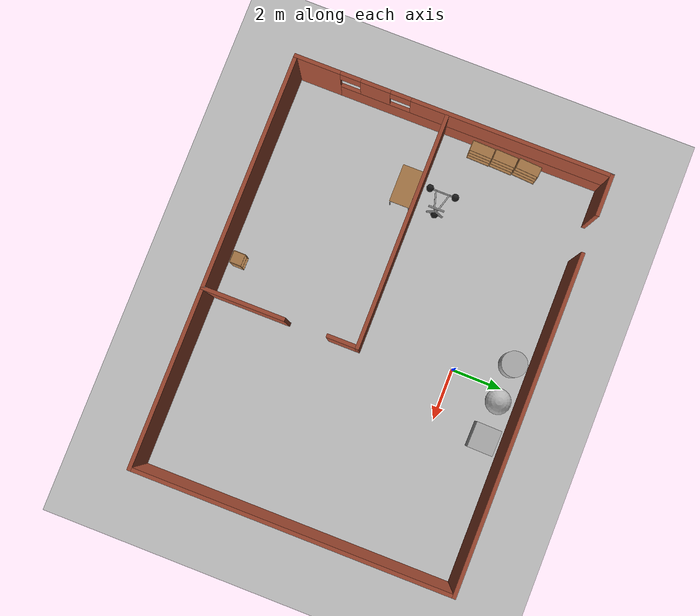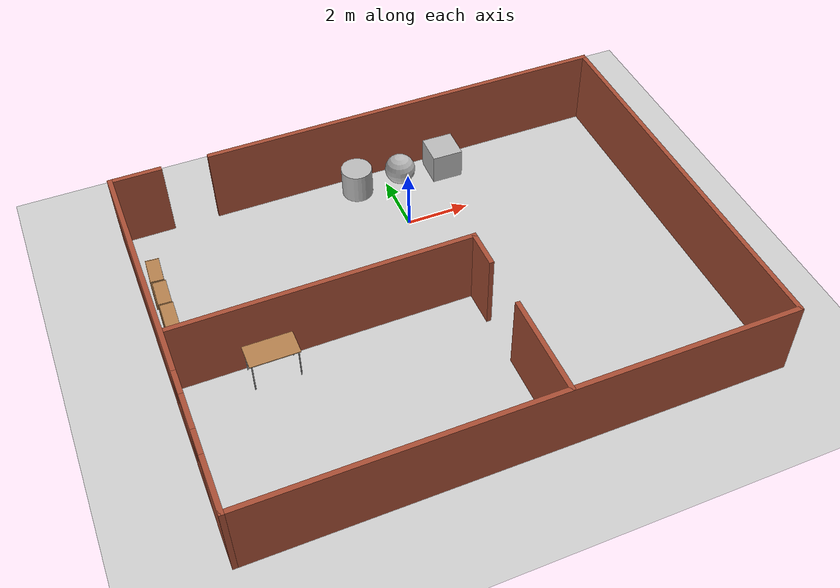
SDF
<sdf version="1.6">
 <world name="default">
  <light name="sun" type="directional">
   <pose>0 0 10 0 -0 0</pose>
   <diffuse>0.8 0.8 0.8 1</diffuse>
   <specular>0.2 0.2 0.2 1</specular>
   <attenuation>
    <range>1000</range>
    <constant>0.9</constant>
    <linear>0.01</linear>
    <quadratic>0.001</quadratic>
   </attenuation>
   <direction>-0.5 0.1 -0.9</direction>
  </light>
  <model name="ground_plane">
   <static>1</static>
   <link name="link">
    <collision name="collision">
     <geometry><plane><normal>0 0 1</normal><size>100 100</size></plane></geometry>
     <surface>
      <contact><collide_bitmask>65535</collide_bitmask></contact>
      <friction><ode><mu>100</mu><mu2>50</mu2></ode></friction>
     </surface>
    </collision>
    <visual name="visual">
     <cast_shadows>0</cast_shadows>
     <geometry><plane><normal>0 0 1</normal><size>100 100</size></plane></geometry>
     <material>
      <script><uri>file://media/materials/scripts/gazebo.material</uri><name>Gazebo/Grey</name></script>
     </material>
    </visual>
   </link>
  </model>
  <gravity>0 0 -9.8</gravity>
  <magnetic_field>6e-06 2.3e-05 -4.2e-05</magnetic_field>
  <atmosphere type="adiabatic"/>
  <physics name="default_physics" default="0" type="ode">
   <max_step_size>0.001</max_step_size>
   <real_time_factor>1</real_time_factor>
   <real_time_update_rate>1000</real_time_update_rate>
  </physics>
  <scene><ambient>0.4 0.4 0.4 1</ambient><background>0.7 0.7 0.7 1</background><shadows>1</shadows></scene>
  <spherical_coordinates>
   <surface_model>EARTH_WGS84</surface_model>
   <latitude_deg>0</latitude_deg>
   <longitude_deg>0</longitude_deg>
   <elevation>0</elevation>
   <heading_deg>0</heading_deg>
  </spherical_coordinates>
  <model name="Custom_Room">
   <pose>-0.501943 -3.41101 0 0 -0 0</pose>
   <link name="Wall_0">
    <pose>0 6.175 0 0 -0 0</pose>
    <visual name="Wall_0_Visual_0">
     <pose>-7.29743 0 1.25 0 -0 0</pose>
     <geometry><box><size>1.65513 0.15 2.5</size></box></geometry>
     <material>
      <script><uri>file://media/materials/scripts/gazebo.material</uri><name>Gazebo/Bricks</name></script>
      <ambient>1 1 1 1</ambient>
     </material>
     <meta><layer>0</layer></meta>
    </visual>
    <collision name="Wall_0_Collision_0">
     <geometry><box><size>1.65513 0.15 2.5</size></box></geometry>
     <pose>-7.29743 0 1.25 0 -0 0</pose>
    </collision>
    <visual name="Wall_0_Visual_1">
     <pose>1.54257 0 1.25 0 -0 0</pose>
     <geometry><box><size>13.1649 0.15 2.5</size></box></geometry>
     <material>
      <script><uri>file://media/materials/scripts/gazebo.material</uri><name>Gazebo/Bricks</name></script>
      <ambient>1 1 1 1</ambient>
     </material>
     <meta><layer>0</layer></meta>
    </visual>
    <collision name="Wall_0_Collision_1">
     <geometry><box><size>13.1649 0.15 2.5</size></box></geometry>
     <pose>1.54257 0 1.25 0 -0 0</pose>
    </collision>
   </link>
   <link name="Wall_1">
    <collision name="Wall_1_Collision">
     <geometry><box><size>12.5 0.15 2.5</size></box></geometry>
     <pose>0 0 1.25 0 -0 0</pose>
    </collision>
    <visual name="Wall_1_Visual">
     <pose>0 0 1.25 0 -0 0</pose>
     <geometry><box><size>12.5 0.15 2.5</size></box></geometry>
     <material>
      <script><uri>file://media/materials/scripts/gazebo.material</uri><name>Gazebo/Bricks</name></script>
      <ambient>1 1 1 1</ambient>
     </material>
     <meta><layer>0</layer></meta>
    </visual>
    <pose>8.05 0 0 0 0 -1.5708</pose>
   </link>
   <link name="Wall_14">
    <collision name="Wall_14_Collision">
     <geometry><box><size>3.25 0.15 2.5</size></box></geometry>
     <pose>0 0 1.25 0 -0 0</pose>
    </collision>
    <visual name="Wall_14_Visual">
     <pose>0 0 1.25 0 -0 0</pose>
     <geometry><box><size>3.25 0.15 2.5</size></box></geometry>
     <material>
      <script><uri>file://media/materials/scripts/gazebo.material</uri><name>Gazebo/Bricks</name></script>
      <ambient>1 1 1 1</ambient>
     </material>
     <meta><layer>0</layer></meta>
    </visual>
    <pose>1.1191 -4.60374 0 0 0 -1.5708</pose>
   </link>
   <link name="Wall_15">
    <collision name="Wall_15_Collision">
     <geometry><box><size>0.15 0.15 2.5</size></box></geometry>
     <pose>0 0 1.25 0 -0 0</pose>
    </collision>
    <visual name="Wall_15_Visual">
     <pose>0 0 1.25 0 -0 0</pose>
     <geometry><box><size>0.15 0.15 2.5</size></box></geometry>
     <material>
      <script><uri>file://media/materials/scripts/gazebo.material</uri><name>Gazebo/Grey</name></script>
      <ambient>1 1 1 1</ambient>
     </material>
     <meta><layer>0</layer></meta>
    </visual>
    <pose>1.1191 -6.15374 0 0 -0 0</pose>
   </link>
   <link name="Wall_2">
    <collision name="Wall_2_Collision">
     <geometry><box><size>16.25 0.15 2.5</size></box></geometry>
     <pose>0 0 1.25 0 -0 0</pose>
    </collision>
    <visual name="Wall_2_Visual">
     <pose>0 0 1.25 0 -0 0</pose>
     <geometry><box><size>16.25 0.15 2.5</size></box></geometry>
     <material>
      <script><uri>file://media/materials/scripts/gazebo.material</uri><name>Gazebo/Bricks</name></script>
      <ambient>1 1 1 1</ambient>
     </material>
     <meta><layer>0</layer></meta>
    </visual>
    <pose>0 -6.175 0 0 -0 3.14159</pose>
   </link>
   <link name="Wall_3">
    <pose>-8.05 0 0 0 -0 1.5708</pose>
    <visual name="Wall_3_Visual_0">
     <pose>-5.33416 0 1.25 0 -0 0</pose>
     <geometry><box><size>1.83167 0.15 2.5</size></box></geometry>
     <material>
      <script><uri>file://media/materials/scripts/gazebo.material</uri><name>Gazebo/Bricks</name></script>
      <ambient>1 1 1 1</ambient>
     </material>
     <meta><layer>0</layer></meta>
    </visual>
    <collision name="Wall_3_Collision_0">
     <geometry><box><size>1.83167 0.15 2.5</size></box></geometry>
     <pose>-5.33416 0 1.25 0 -0 0</pose>
    </collision>
    <visual name="Wall_3_Visual_1">
     <pose>0.915837 0 0.55 0 -0 0</pose>
     <geometry><box><size>10.6683 0.15 1.1</size></box></geometry>
     <material>
      <script><uri>file://media/materials/scripts/gazebo.material</uri><name>Gazebo/Bricks</name></script>
      <ambient>1 1 1 1</ambient>
     </material>
     <meta><layer>0</layer></meta>
    </visual>
    <collision name="Wall_3_Collision_1">
     <geometry><box><size>10.6683 0.15 1.1</size></box></geometry>
     <pose>0.915837 0 0.55 0 -0 0</pose>
    </collision>
    <visual name="Wall_3_Visual_2">
     <pose>-3.03016 0 1.8 0 -0 0</pose>
     <geometry><box><size>1.17633 0.15 1.4</size></box></geometry>
     <material>
      <script><uri>file://media/materials/scripts/gazebo.material</uri><name>Gazebo/Bricks</name></script>
      <ambient>1 1 1 1</ambient>
     </material>
     <meta><layer>0</layer></meta>
    </visual>
    <collision name="Wall_3_Collision_2">
     <geometry><box><size>1.17633 0.15 1.4</size></box></geometry>
     <pose>-3.03016 0 1.8 0 -0 0</pose>
    </collision>
    <visual name="Wall_3_Visual_3">
     <pose>2.304 0 1.8 0 -0 0</pose>
     <geometry><box><size>7.89199 0.15 1.4</size></box></geometry>
     <material>
      <script><uri>file://media/materials/scripts/gazebo.material</uri><name>Gazebo/Bricks</name></script>
      <ambient>1 1 1 1</ambient>
     </material>
     <meta><layer>0</layer></meta>
    </visual>
    <collision name="Wall_3_Collision_3">
     <geometry><box><size>7.89199 0.15 1.4</size></box></geometry>
     <pose>2.304 0 1.8 0 -0 0</pose>
    </collision>
    <visual name="Wall_3_Visual_4">
     <pose>-4.01833 0 2.2 0 -0 0</pose>
     <geometry><box><size>0.8 0.15 0.6</size></box></geometry>
     <material>
      <script><uri>file://media/materials/scripts/gazebo.material</uri><name>Gazebo/Bricks</name></script>
      <ambient>1 1 1 1</ambient>
     </material>
     <meta><layer>0</layer></meta>
    </visual>
    <collision name="Wall_3_Collision_4">
     <geometry><box><size>0.8 0.15 0.6</size></box></geometry>
     <pose>-4.01833 0 2.2 0 -0 0</pose>
    </collision>
    <visual name="Wall_3_Visual_5">
     <pose>-2.04199 0 2.2 0 -0 0</pose>
     <geometry><box><size>0.8 0.15 0.6</size></box></geometry>
     <material>
      <script><uri>file://media/materials/scripts/gazebo.material</uri><name>Gazebo/Bricks</name></script>
      <ambient>1 1 1 1</ambient>
     </material>
     <meta><layer>0</layer></meta>
    </visual>
    <collision name="Wall_3_Collision_5">
     <geometry><box><size>0.8 0.15 0.6</size></box></geometry>
     <pose>-2.04199 0 2.2 0 -0 0</pose>
    </collision>
   </link>
   <link name="Wall_4">
    <collision name="Wall_4_Collision">
     <geometry><box><size>0.15 0.15 2.5</size></box></geometry>
     <pose>0 0 1.25 0 -0 0</pose>
    </collision>
    <visual name="Wall_4_Visual">
     <pose>0 0 1.25 0 -0 0</pose>
     <geometry><box><size>0.15 0.15 2.5</size></box></geometry>
     <material>
      <script><uri>file://media/materials/scripts/gazebo.material</uri><name>Gazebo/Grey</name></script>
      <ambient>1 1 1 1</ambient>
     </material>
     <meta><layer>0</layer></meta>
    </visual>
    <pose>-8.05 6.175 0 0 -0 0</pose>
   </link>
   <link name="Wall_6">
    <collision name="Wall_6_Collision">
     <geometry><box><size>9.16271 0.15 2.5</size></box></geometry>
     <pose>0 0 1.25 0 -0 0</pose>
    </collision>
    <visual name="Wall_6_Visual">
     <pose>0 0 1.25 0 -0 0</pose>
     <geometry><box><size>9.16271 0.15 2.5</size></box></geometry>
     <material>
      <script><uri>file://media/materials/scripts/gazebo.material</uri><name>Gazebo/Bricks</name></script>
      <ambient>1 1 1 1</ambient>
     </material>
     <meta><layer>0</layer></meta>
    </visual>
    <pose>-3.40487 -0.198702 0 0 -0 0.002296</pose>
   </link>
   <link name="Wall_7">
    <collision name="Wall_7_Collision">
     <geometry><box><size>1.25 0.15 2.5</size></box></geometry>
     <pose>0 0 1.25 0 -0 0</pose>
    </collision>
    <visual name="Wall_7_Visual">
     <pose>0 0 1.25 0 -0 0</pose>
     <geometry><box><size>1.25 0.15 2.5</size></box></geometry>
     <material>
      <script><uri>file://media/materials/scripts/gazebo.material</uri><name>Gazebo/Bricks</name></script>
      <ambient>1 1 1 1</ambient>
     </material>
     <meta><layer>0</layer></meta>
    </visual>
    <pose>1.10148 -0.755847 0 0 0 -1.5708</pose>
   </link>
   <static>1</static>
  </model>
  <model name="bookshelf">
   <static>1</static>
   <link name="link">
    <inertial><mass>1</mass></inertial>
    <collision name="back">
     <pose>0 0.005 0.6 0 -0 0</pose>
     <geometry><box><size>0.9 0.01 1.2</size></box></geometry>
    </collision>
    <visual name="visual1">
     <pose>0 0.005 0.6 0 -0 0</pose>
     <geometry><box><size>0.9 0.01 1.2</size></box></geometry>
     <material>
      <script><uri>file://media/materials/scripts/gazebo.material</uri><name>Gazebo/Wood</name></script>
     </material>
    </visual>
    <collision name="left_side">
     <pose>0.45 -0.195 0.6 0 -0 0</pose>
     <geometry><box><size>0.02 0.4 1.2</size></box></geometry>
    </collision>
    <visual name="visual2">
     <pose>0.45 -0.195 0.6 0 -0 0</pose>
     <geometry><box><size>0.02 0.4 1.2</size></box></geometry>
     <material>
      <script><uri>file://media/materials/scripts/gazebo.material</uri><name>Gazebo/Wood</name></script>
     </material>
    </visual>
    <collision name="right_side">
     <pose>-0.45 -0.195 0.6 0 -0 0</pose>
     <geometry><box><size>0.02 0.4 1.2</size></box></geometry>
    </collision>
    <visual name="visual3">
     <pose>-0.45 -0.195 0.6 0 -0 0</pose>
     <geometry><box><size>0.02 0.4 1.2</size></box></geometry>
     <material>
      <script><uri>file://media/materials/scripts/gazebo.material</uri><name>Gazebo/Wood</name></script>
     </material>
    </visual>
    <collision name="bottom">
     <pose>0 -0.195 0.03 0 -0 0</pose>
     <geometry><box><size>0.88 0.4 0.06</size></box></geometry>
    </collision>
    <visual name="visual4">
     <pose>0 -0.195 0.03 0 -0 0</pose>
     <geometry><box><size>0.88 0.4 0.06</size></box></geometry>
     <material>
      <script><uri>file://media/materials/scripts/gazebo.material</uri><name>Gazebo/Wood</name></script>
     </material>
    </visual>
    <collision name="top">
     <pose>0 -0.195 1.19 0 -0 0</pose>
     <geometry><box><size>0.88 0.4 0.02</size></box></geometry>
    </collision>
    <visual name="visual5">
     <pose>0 -0.195 1.19 0 -0 0</pose>
     <geometry><box><size>0.88 0.4 0.02</size></box></geometry>
     <material>
      <script><uri>file://media/materials/scripts/gazebo.material</uri><name>Gazebo/Wood</name></script>
     </material>
    </visual>
    <collision name="low_shelf">
     <pose>0 -0.195 0.43 0 -0 0</pose>
     <geometry><box><size>0.88 0.4 0.02</size></box></geometry>
    </collision>
    <visual name="visual6">
     <pose>0 -0.195 0.43 0 -0 0</pose>
     <geometry><box><size>0.88 0.4 0.02</size></box></geometry>
     <material>
      <script><uri>file://media/materials/scripts/gazebo.material</uri><name>Gazebo/Wood</name></script>
     </material>
    </visual>
    <collision name="high_shelf">
     <pose>0 -0.195 0.8 0 -0 0</pose>
     <geometry><box><size>0.88 0.4 0.02</size></box></geometry>
    </collision>
    <visual name="visual7">
     <pose>0 -0.195 0.8 0 -0 0</pose>
     <geometry><box><size>0.88 0.4 0.02</size></box></geometry>
     <material>
      <script><uri>file://media/materials/scripts/gazebo.material</uri><name>Gazebo/Wood</name></script>
     </material>
    </visual>
   </link>
   <pose>-8.30794 -1.94762 0 0 -0 1.54178</pose>
  </model>
  <model name="bookshelf_0">
   <static>1</static>
   <link name="link">
    <inertial><mass>1</mass></inertial>
    <collision name="back">
     <pose>0 0.005 0.6 0 -0 0</pose>
     <geometry><box><size>0.9 0.01 1.2</size></box></geometry>
    </collision>
    <visual name="visual1">
     <pose>0 0.005 0.6 0 -0 0</pose>
     <geometry><box><size>0.9 0.01 1.2</size></box></geometry>
     <material>
      <script><uri>file://media/materials/scripts/gazebo.material</uri><name>Gazebo/Wood</name></script>
     </material>
    </visual>
    <collision name="left_side">
     <pose>0.45 -0.195 0.6 0 -0 0</pose>
     <geometry><box><size>0.02 0.4 1.2</size></box></geometry>
    </collision>
    <visual name="visual2">
     <pose>0.45 -0.195 0.6 0 -0 0</pose>
     <geometry><box><size>0.02 0.4 1.2</size></box></geometry>
     <material>
      <script><uri>file://media/materials/scripts/gazebo.material</uri><name>Gazebo/Wood</name></script>
     </material>
    </visual>
    <collision name="right_side">
     <pose>-0.45 -0.195 0.6 0 -0 0</pose>
     <geometry><box><size>0.02 0.4 1.2</size></box></geometry>
    </collision>
    <visual name="visual3">
     <pose>-0.45 -0.195 0.6 0 -0 0</pose>
     <geometry><box><size>0.02 0.4 1.2</size></box></geometry>
     <material>
      <script><uri>file://media/materials/scripts/gazebo.material</uri><name>Gazebo/Wood</name></script>
     </material>
    </visual>
    <collision name="bottom">
     <pose>0 -0.195 0.03 0 -0 0</pose>
     <geometry><box><size>0.88 0.4 0.06</size></box></geometry>
    </collision>
    <visual name="visual4">
     <pose>0 -0.195 0.03 0 -0 0</pose>
     <geometry><box><size>0.88 0.4 0.06</size></box></geometry>
     <material>
      <script><uri>file://media/materials/scripts/gazebo.material</uri><name>Gazebo/Wood</name></script>
     </material>
    </visual>
    <collision name="top">
     <pose>0 -0.195 1.19 0 -0 0</pose>
     <geometry><box><size>0.88 0.4 0.02</size></box></geometry>
    </collision>
    <visual name="visual5">
     <pose>0 -0.195 1.19 0 -0 0</pose>
     <geometry><box><size>0.88 0.4 0.02</size></box></geometry>
     <material>
      <script><uri>file://media/materials/scripts/gazebo.material</uri><name>Gazebo/Wood</name></script>
     </material>
    </visual>
    <collision name="low_shelf">
     <pose>0 -0.195 0.43 0 -0 0</pose>
     <geometry><box><size>0.88 0.4 0.02</size></box></geometry>
    </collision>
    <visual name="visual6">
     <pose>0 -0.195 0.43 0 -0 0</pose>
     <geometry><box><size>0.88 0.4 0.02</size></box></geometry>
     <material>
      <script><uri>file://media/materials/scripts/gazebo.material</uri><name>Gazebo/Wood</name></script>
     </material>
    </visual>
    <collision name="high_shelf">
     <pose>0 -0.195 0.8 0 -0 0</pose>
     <geometry><box><size>0.88 0.4 0.02</size></box></geometry>
    </collision>
    <visual name="visual7">
     <pose>0 -0.195 0.8 0 -0 0</pose>
     <geometry><box><size>0.88 0.4 0.02</size></box></geometry>
     <material>
      <script><uri>file://media/materials/scripts/gazebo.material</uri><name>Gazebo/Wood</name></script>
     </material>
    </visual>
   </link>
   <pose>-8.29832 -1.01477 0 0 -0 1.53285</pose>
  </model>
  <model name="bookshelf_1">
   <static>1</static>
   <link name="link">
    <inertial><mass>1</mass></inertial>
    <collision name="back">
     <pose>0 0.005 0.6 0 -0 0</pose>
     <geometry><box><size>0.9 0.01 1.2</size></box></geometry>
    </collision>
    <visual name="visual1">
     <pose>0 0.005 0.6 0 -0 0</pose>
     <geometry><box><size>0.9 0.01 1.2</size></box></geometry>
     <material>
      <script><uri>file://media/materials/scripts/gazebo.material</uri><name>Gazebo/Wood</name></script>
     </material>
    </visual>
    <collision name="left_side">
     <pose>0.45 -0.195 0.6 0 -0 0</pose>
     <geometry><box><size>0.02 0.4 1.2</size></box></geometry>
    </collision>
    <visual name="visual2">
     <pose>0.45 -0.195 0.6 0 -0 0</pose>
     <geometry><box><size>0.02 0.4 1.2</size></box></geometry>
     <material>
      <script><uri>file://media/materials/scripts/gazebo.material</uri><name>Gazebo/Wood</name></script>
     </material>
    </visual>
    <collision name="right_side">
     <pose>-0.45 -0.195 0.6 0 -0 0</pose>
     <geometry><box><size>0.02 0.4 1.2</size></box></geometry>
    </collision>
    <visual name="visual3">
     <pose>-0.45 -0.195 0.6 0 -0 0</pose>
     <geometry><box><size>0.02 0.4 1.2</size></box></geometry>
     <material>
      <script><uri>file://media/materials/scripts/gazebo.material</uri><name>Gazebo/Wood</name></script>
     </material>
    </visual>
    <collision name="bottom">
     <pose>0 -0.195 0.03 0 -0 0</pose>
     <geometry><box><size>0.88 0.4 0.06</size></box></geometry>
    </collision>
    <visual name="visual4">
     <pose>0 -0.195 0.03 0 -0 0</pose>
     <geometry><box><size>0.88 0.4 0.06</size></box></geometry>
     <material>
      <script><uri>file://media/materials/scripts/gazebo.material</uri><name>Gazebo/Wood</name></script>
     </material>
    </visual>
    <collision name="top">
     <pose>0 -0.195 1.19 0 -0 0</pose>
     <geometry><box><size>0.88 0.4 0.02</size></box></geometry>
    </collision>
    <visual name="visual5">
     <pose>0 -0.195 1.19 0 -0 0</pose>
     <geometry><box><size>0.88 0.4 0.02</size></box></geometry>
     <material>
      <script><uri>file://media/materials/scripts/gazebo.material</uri><name>Gazebo/Wood</name></script>
     </material>
    </visual>
    <collision name="low_shelf">
     <pose>0 -0.195 0.43 0 -0 0</pose>
     <geometry><box><size>0.88 0.4 0.02</size></box></geometry>
    </collision>
    <visual name="visual6">
     <pose>0 -0.195 0.43 0 -0 0</pose>
     <geometry><box><size>0.88 0.4 0.02</size></box></geometry>
     <material>
      <script><uri>file://media/materials/scripts/gazebo.material</uri><name>Gazebo/Wood</name></script>
     </material>
    </visual>
    <collision name="high_shelf">
     <pose>0 -0.195 0.8 0 -0 0</pose>
     <geometry><box><size>0.88 0.4 0.02</size></box></geometry>
    </collision>
    <visual name="visual7">
     <pose>0 -0.195 0.8 0 -0 0</pose>
     <geometry><box><size>0.88 0.4 0.02</size></box></geometry>
     <material>
      <script><uri>file://media/materials/scripts/gazebo.material</uri><name>Gazebo/Wood</name></script>
     </material>
    </visual>
   </link>
   <pose>-8.29346 -0.064769 0 0 -0 1.50755</pose>
  </model>
  <model name="table">
   <static>1</static>
   <link name="link">
    <collision name="surface">
     <pose>0 0 1 0 -0 0</pose>
     <geometry><box><size>1.5 0.8 0.03</size></box></geometry>
     <surface><friction><ode><mu>0.6</mu><mu2>0.6</mu2></ode></friction></surface>
    </collision>
    <visual name="visual1">
     <pose>0 0 1 0 -0 0</pose>
     <geometry><box><size>1.5 0.8 0.03</size></box></geometry>
     <material>
      <script><uri>file://media/materials/scripts/gazebo.material</uri><name>Gazebo/Wood</name></script>
     </material>
    </visual>
    <collision name="front_left_leg">
     <pose>0.68 0.38 0.5 0 -0 0</pose>
     <geometry><cylinder><radius>0.02</radius><length>1</length></cylinder></geometry>
    </collision>
    <visual name="front_left_leg">
     <pose>0.68 0.38 0.5 0 -0 0</pose>
     <geometry><cylinder><radius>0.02</radius><length>1</length></cylinder></geometry>
     <material>
      <script><uri>file://media/materials/scripts/gazebo.material</uri><name>Gazebo/Grey</name></script>
     </material>
    </visual>
    <collision name="front_right_leg">
     <pose>0.68 -0.38 0.5 0 -0 0</pose>
     <geometry><cylinder><radius>0.02</radius><length>1</length></cylinder></geometry>
    </collision>
    <visual name="front_right_leg">
     <pose>0.68 -0.38 0.5 0 -0 0</pose>
     <geometry><cylinder><radius>0.02</radius><length>1</length></cylinder></geometry>
     <material>
      <script><uri>file://media/materials/scripts/gazebo.material</uri><name>Gazebo/Grey</name></script>
     </material>
    </visual>
    <collision name="back_right_leg">
     <pose>-0.68 -0.38 0.5 0 -0 0</pose>
     <geometry><cylinder><radius>0.02</radius><length>1</length></cylinder></geometry>
    </collision>
    <visual name="back_right_leg">
     <pose>-0.68 -0.38 0.5 0 -0 0</pose>
     <geometry><cylinder><radius>0.02</radius><length>1</length></cylinder></geometry>
     <material>
      <script><uri>file://media/materials/scripts/gazebo.material</uri><name>Gazebo/Grey</name></script>
     </material>
    </visual>
    <collision name="back_left_leg">
     <pose>-0.68 0.38 0.5 0 -0 0</pose>
     <geometry><cylinder><radius>0.02</radius><length>1</length></cylinder></geometry>
    </collision>
    <visual name="back_left_leg">
     <pose>-0.68 0.38 0.5 0 -0 0</pose>
     <geometry><cylinder><radius>0.02</radius><length>1</length></cylinder></geometry>
     <material>
      <script><uri>file://media/materials/scripts/gazebo.material</uri><name>Gazebo/Grey</name></script>
     </material>
    </visual>
   </link>
   <pose>-5.8054 -4.1437 0 0 -0 0</pose>
  </model>
  <model name="trisphere_cycle">
   <link name="frame">
    <pose>-0.408559 0 0.385023 0 -0.522021 0</pose>
    <inertial>
     <mass>10</mass>
     <inertia><ixx>0.228</ixx><iyy>0.743521</iyy><izz>0.965521</izz><ixy>0</ixy><ixz>0</ixz><iyz>0</iyz></inertia>
    </inertial>
    <collision name="axle_collision">
     <pose>-0.471335 0 0 1.5708 -0 0</pose>
     <geometry><cylinder><length>1.03923</length><radius>0.03</radius></cylinder></geometry>
    </collision>
    <visual name="axle_visual">
     <pose>-0.471335 0 0 1.5708 -0 0</pose>
     <geometry><cylinder><length>1.03923</length><radius>0.03</radius></cylinder></geometry>
     <material>
      <script><uri>file://media/materials/scripts/gazebo.material</uri><name>Gazebo/Grey</name></script>
     </material>
    </visual>
    <collision name="frame_left_collision">
     <pose>0 0.171552 0 2.986 1.57079 2.76675</pose>
     <geometry><cylinder><length>1.00317</length><radius>0.03</radius></cylinder></geometry>
    </collision>
    <visual name="frame_left_visual">
     <pose>0 0.171552 0 2.986 1.57079 2.76675</pose>
     <geometry><cylinder><length>1.00317</length><radius>0.03</radius></cylinder></geometry>
     <material>
      <script><uri>file://media/materials/scripts/gazebo.material</uri><name>Gazebo/Grey</name></script>
     </material>
    </visual>
    <collision name="frame_right_collision">
     <pose>0 -0.171552 0 -2.986 1.57079 -2.76675</pose>
     <geometry><cylinder><length>1.00317</length><radius>0.03</radius></cylinder></geometry>
    </collision>
    <visual name="frame_right_visual">
     <pose>0 -0.171552 0 -2.986 1.57079 -2.76675</pose>
     <geometry><cylinder><length>1.00317</length><radius>0.03</radius></cylinder></geometry>
     <material>
      <script><uri>file://media/materials/scripts/gazebo.material</uri><name>Gazebo/Grey</name></script>
     </material>
    </visual>
   </link>
   <link name="fork">
    <pose>0.041441 0 0.385023 0 -0.174533 0</pose>
    <inertial>
     <mass>3</mass>
     <inertia>
      <ixx>0.158203</ixx>
      <iyy>0.0583594</iyy>
      <izz>0.102656</izz>
      <ixy>0</ixy>
      <ixz>0</ixz>
      <iyz>0</iyz>
     </inertia>
    </inertial>
    <collision name="handlebars_collision">
     <pose>0 0 0.397748 1.5708 -0 0</pose>
     <geometry><cylinder><length>0.636396</length><radius>0.0375</radius></cylinder></geometry>
    </collision>
    <visual name="handlebars_visual">
     <pose>0 0 0.397748 1.5708 -0 0</pose>
     <geometry><cylinder><length>0.636396</length><radius>0.0375</radius></cylinder></geometry>
     <material>
      <script><uri>file://media/materials/scripts/gazebo.material</uri><name>Gazebo/Grey</name></script>
     </material>
    </visual>
    <collision name="headtube_collision">
     <pose>0 0 0.238649 0 -0 0</pose>
     <geometry><cylinder><length>0.318198</length><radius>0.0375</radius></cylinder></geometry>
    </collision>
    <visual name="headtube_visual">
     <pose>0 0 0.238649 0 -0 0</pose>
     <geometry><cylinder><length>0.318198</length><radius>0.0375</radius></cylinder></geometry>
     <material>
      <script><uri>file://media/materials/scripts/gazebo.material</uri><name>Gazebo/Grey</name></script>
     </material>
    </visual>
    <collision name="spindle_collision">
     <pose>0 0 -0.238649 1.5708 -0 0</pose>
     <geometry><cylinder><length>0.636396</length><radius>0.015</radius></cylinder></geometry>
    </collision>
    <visual name="spindle_visual">
     <pose>0 0 -0.238649 1.5708 -0 0</pose>
     <geometry><cylinder><length>0.636396</length><radius>0.015</radius></cylinder></geometry>
     <material>
      <script><uri>file://media/materials/scripts/gazebo.material</uri><name>Gazebo/Grey</name></script>
     </material>
    </visual>
    <collision name="fork_left_collision">
     <pose>0 0.159099 -0.07955 0.785398 -0 0</pose>
     <geometry><cylinder><length>0.45</length><radius>0.0375</radius></cylinder></geometry>
    </collision>
    <visual name="fork_left_visual">
     <pose>0 0.159099 -0.07955 0.785398 -0 0</pose>
     <geometry><cylinder><length>0.45</length><radius>0.0375</radius></cylinder></geometry>
     <material>
      <script><uri>file://media/materials/scripts/gazebo.material</uri><name>Gazebo/Grey</name></script>
     </material>
    </visual>
    <collision name="fork_right_collision">
     <pose>0 -0.159099 -0.07955 -0.785398 0 0</pose>
     <geometry><cylinder><length>0.45</length><radius>0.0375</radius></cylinder></geometry>
    </collision>
    <visual name="fork_right_visual">
     <pose>0 -0.159099 -0.07955 -0.785398 0 0</pose>
     <geometry><cylinder><length>0.45</length><radius>0.0375</radius></cylinder></geometry>
     <material>
      <script><uri>file://media/materials/scripts/gazebo.material</uri><name>Gazebo/Grey</name></script>
     </material>
    </visual>
   </link>
   <link name="wheel_front">
    <pose>0.082882 0 0.15 0 -0 0</pose>
    <inertial>
     <mass>0.5</mass>
     <inertia><ixx>0.0045</ixx><iyy>0.0045</iyy><izz>0.0045</izz><ixy>0</ixy><ixz>0</ixz><iyz>0</iyz></inertia>
    </inertial>
    <collision name="collision">
     <geometry><sphere><radius>0.15</radius></sphere></geometry>
     <surface><contact><ode><kp>1e+08</kp><kd>1</kd><min_depth>0.0005</min_depth></ode></contact></surface>
    </collision>
    <visual name="visual">
     <geometry><sphere><radius>0.15</radius></sphere></geometry>
     <material>
      <script><uri>file://media/materials/scripts/gazebo.material</uri><name>Gazebo/Black</name></script>
     </material>
    </visual>
   </link>
   <joint name="wheel_front_steer" type="revolute">
    <parent>frame</parent>
    <child>fork</child>
    <axis>
     <xyz>0 0 1</xyz>
     <limit><lower>-0.959931</lower><upper>0.959931</upper></limit>
     <use_parent_model_frame>0</use_parent_model_frame>
     <dynamics><spring_reference>0</spring_reference><spring_stiffness>0</spring_stiffness></dynamics>
    </axis>
   </joint>
   <joint name="wheel_front_spin" type="revolute">
    <parent>fork</parent>
    <child>wheel_front</child>
    <axis>
     <xyz>0 1 0</xyz>
     <use_parent_model_frame>0</use_parent_model_frame>
     <limit><lower>-1e+16</lower><upper>1e+16</upper></limit>
     <dynamics><spring_reference>0</spring_reference><spring_stiffness>0</spring_stiffness></dynamics>
    </axis>
   </joint>
   <link name="wheel_rear_left">
    <pose>-0.817118 0.519615 0.15 0 -0 0</pose>
    <inertial>
     <mass>0.5</mass>
     <inertia><ixx>0.0045</ixx><iyy>0.0045</iyy><izz>0.0045</izz><ixy>0</ixy><ixz>0</ixz><iyz>0</iyz></inertia>
    </inertial>
    <collision name="collision">
     <geometry><sphere><radius>0.15</radius></sphere></geometry>
     <surface><contact><ode><kp>1e+08</kp><kd>1</kd><min_depth>0.0005</min_depth></ode></contact></surface>
    </collision>
    <visual name="visual">
     <geometry><sphere><radius>0.15</radius></sphere></geometry>
     <material>
      <script><uri>file://media/materials/scripts/gazebo.material</uri><name>Gazebo/Black</name></script>
     </material>
    </visual>
   </link>
   <joint name="wheel_rear_left_spin" type="revolute">
    <parent>frame</parent>
    <child>wheel_rear_left</child>
    <axis>
     <xyz>0 1 0</xyz>
     <use_parent_model_frame>0</use_parent_model_frame>
     <limit><lower>-1e+16</lower><upper>1e+16</upper></limit>
     <dynamics><spring_reference>0</spring_reference><spring_stiffness>0</spring_stiffness></dynamics>
    </axis>
   </joint>
   <link name="wheel_rear_right">
    <pose>-0.817118 -0.519615 0.15 0 -0 0</pose>
    <inertial>
     <mass>0.5</mass>
     <inertia><ixx>0.0045</ixx><iyy>0.0045</iyy><izz>0.0045</izz><ixy>0</ixy><ixz>0</ixz><iyz>0</iyz></inertia>
    </inertial>
    <collision name="collision">
     <geometry><sphere><radius>0.15</radius></sphere></geometry>
     <surface><contact><ode><kp>1e+08</kp><kd>1</kd><min_depth>0.0005</min_depth></ode></contact></surface>
    </collision>
    <visual name="visual">
     <geometry><sphere><radius>0.15</radius></sphere></geometry>
     <material>
      <script><uri>file://media/materials/scripts/gazebo.material</uri><name>Gazebo/Black</name></script>
     </material>
    </visual>
   </link>
   <joint name="wheel_rear_right_spin" type="revolute">
    <parent>frame</parent>
    <child>wheel_rear_right</child>
    <axis>
     <xyz>0 1 0</xyz>
     <use_parent_model_frame>0</use_parent_model_frame>
     <limit><lower>-1e+16</lower><upper>1e+16</upper></limit>
     <dynamics><spring_reference>0</spring_reference><spring_stiffness>0</spring_stiffness></dynamics>
    </axis>
   </joint>
   <pose>-5.43854 -2.77743 -0.000501 0 1e-06 -0.001792</pose>
  </model>
  <model name="textured_shapes">
   <pose>0.495835 2.00827 0.5 0 -0 1.55029</pose>
   <link name="box">
    <pose>0 -1.5 0 0 -0 0</pose>
    <collision name="collision"><geometry><box><size>1 1 1</size></box></geometry></collision>
    <visual name="visual">
     <geometry><box><size>1 1 1</size></box></geometry>
     <material>
      <script>
       <uri>model://textured_shapes/materials/scripts</uri>
       <uri>model://textured_shapes/materials/textures</uri>
       <name>TexturedShape/Squares</name>
      </script>
     </material>
    </visual>
    <inertial>
     <inertia><ixx>1</ixx><ixy>0</ixy><ixz>0</ixz><iyy>1</iyy><iyz>0</iyz><izz>1</izz></inertia>
     <mass>1</mass>
    </inertial>
   </link>
   <link name="sphere">
    <collision name="collision"><geometry><sphere><radius>0.5</radius></sphere></geometry></collision>
    <visual name="visual">
     <geometry><sphere><radius>0.5</radius></sphere></geometry>
     <material>
      <script>
       <uri>model://textured_shapes/materials/scripts</uri>
       <uri>model://textured_shapes/materials/textures</uri>
       <name>TexturedShape/Squares</name>
      </script>
     </material>
    </visual>
    <inertial>
     <inertia><ixx>1</ixx><ixy>0</ixy><ixz>0</ixz><iyy>1</iyy><iyz>0</iyz><izz>1</izz></inertia>
     <mass>1</mass>
    </inertial>
   </link>
   <link name="cylinder">
    <pose>0 1.5 0 0 -0 0</pose>
    <collision name="collision">
     <geometry><cylinder><radius>0.5</radius><length>1</length></cylinder></geometry>
    </collision>
    <visual name="visual">
     <geometry><cylinder><radius>0.5</radius><length>1</length></cylinder></geometry>
     <material>
      <script>
       <uri>model://textured_shapes/materials/scripts</uri>
       <uri>model://textured_shapes/materials/textures</uri>
       <name>TexturedShape/Squares</name>
      </script>
     </material>
    </visual>
    <inertial>
     <inertia><ixx>1</ixx><ixy>0</ixy><ixz>0</ixz><iyy>1</iyy><iyz>0</iyz><izz>1</izz></inertia>
     <mass>1</mass>
    </inertial>
   </link>
  </model>
  <model name="cabinet">
   <static>1</static>
   <link name="cabinet_bottom_plate">
    <inertial>
     <pose>0 0 -1 0 -0 0</pose>
     <inertia><ixx>2.05</ixx><ixy>0</ixy><ixz>0</ixz><iyy>2.05</iyy><iyz>0</iyz><izz>2.05</izz></inertia>
     <mass>25</mass>
    </inertial>
    <collision name="cabinet_bottom_plate_geom">
     <pose>0 0 0.01 0 -0 0</pose>
     <geometry><box><size>0.45 0.45 0.02</size></box></geometry>
    </collision>
    <visual name="cabinet_bottom_plate_geom_visual">
     <pose>0 0 0.01 0 -0 0</pose>
     <geometry><box><size>0.45 0.45 0.02</size></box></geometry>
     <material>
      <script><uri>file://media/materials/scripts/gazebo.material</uri><name>Gazebo/Wood</name></script>
     </material>
    </visual>
    <collision name="cabinet_bottom_plate_geom_cabinet_back_plate">
     <pose>0.235 0 0.51 0 -0 0</pose>
     <geometry><box><size>0.02 0.45 1.02</size></box></geometry>
    </collision>
    <visual name="cabinet_bottom_plate_geom_cabinet_back_plate_visual">
     <pose>0.235 0 0.51 0 -0 0</pose>
     <geometry><box><size>0.02 0.45 1.02</size></box></geometry>
     <material>
      <script><uri>file://media/materials/scripts/gazebo.material</uri><name>Gazebo/Wood</name></script>
     </material>
    </visual>
    <collision name="cabinet_bottom_plate_geom_cabinet_left_plate">
     <pose>0 0.235 0.51 0 -0 0</pose>
     <geometry><box><size>0.45 0.02 1.02</size></box></geometry>
    </collision>
    <visual name="cabinet_bottom_plate_geom_cabinet_left_plate_visual">
     <pose>0 0.235 0.51 0 -0 0</pose>
     <geometry><box><size>0.45 0.02 1.02</size></box></geometry>
     <material>
      <script><uri>file://media/materials/scripts/gazebo.material</uri><name>Gazebo/Wood</name></script>
     </material>
    </visual>
    <collision name="cabinet_bottom_plate_geom_cabinet_middle_plate">
     <pose>0 0 0.51 0 -0 0</pose>
     <geometry><box><size>0.45 0.45 0.02</size></box></geometry>
    </collision>
    <visual name="cabinet_bottom_plate_geom_cabinet_middle_plate_visual">
     <pose>0 0 0.51 0 -0 0</pose>
     <geometry><box><size>0.45 0.45 0.02</size></box></geometry>
     <material>
      <script><uri>file://media/materials/scripts/gazebo.material</uri><name>Gazebo/Wood</name></script>
     </material>
    </visual>
    <collision name="cabinet_bottom_plate_geom_cabinet_right_plate">
     <pose>0 -0.235 0.51 0 -0 0</pose>
     <geometry><box><size>0.45 0.02 1.02</size></box></geometry>
    </collision>
    <visual name="cabinet_bottom_plate_geom_cabinet_right_plate_visual">
     <pose>0 -0.235 0.51 0 -0 0</pose>
     <geometry><box><size>0.45 0.02 1.02</size></box></geometry>
     <material>
      <script><uri>file://media/materials/scripts/gazebo.material</uri><name>Gazebo/Wood</name></script>
     </material>
    </visual>
    <collision name="cabinet_bottom_plate_geom_cabinet_top_plate">
     <pose>0 0 1.01 0 -0 0</pose>
     <geometry><box><size>0.45 0.45 0.02</size></box></geometry>
    </collision>
    <visual name="cabinet_bottom_plate_geom_cabinet_top_plate_visual">
     <pose>0 0 1.01 0 -0 0</pose>
     <geometry><box><size>0.45 0.45 0.02</size></box></geometry>
     <material>
      <script><uri>file://media/materials/scripts/gazebo.material</uri><name>Gazebo/Wood</name></script>
     </material>
    </visual>
   </link>
   <pose>-0.950794 -9.06469 0 0 0 -1.58216</pose>
  </model>
 </world>
</sdf>
